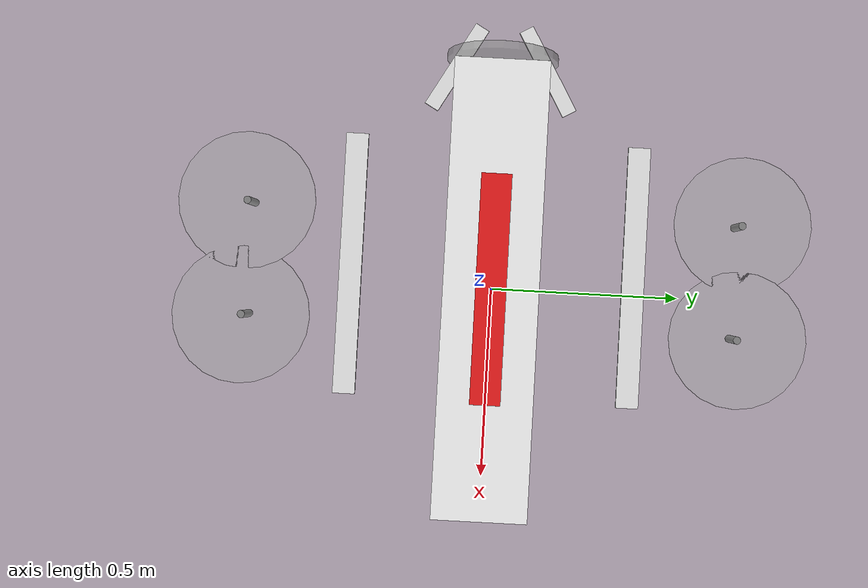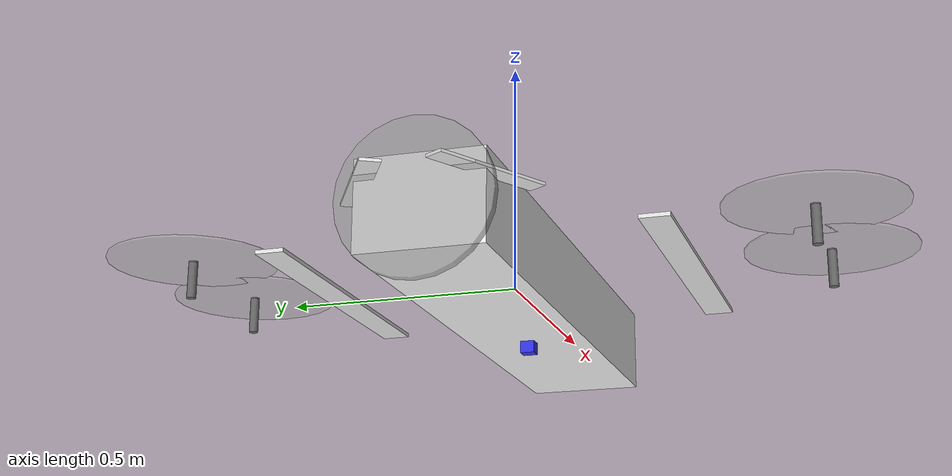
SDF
<?xml version="1.0"?>
<sdf version="1.9">
  <model name="isr_drone">
    <static>false</static>

    <!-- BASE LINK — Fuselage VTOL                  -->
    <link name="base_link">
      <pose>0 0 0 0 0 0</pose>

      <inertial>
        <mass>4.5</mass>
        <inertia>
          <!-- I = m/12 * (b² + c²) pour un box -->
          <ixx>0.0353</ixx>
          <iyy>0.5535</iyy>
          <izz>0.5625</izz>
          <ixy>0</ixy>
          <ixz>0</ixz>
          <iyz>0</iyz>
        </inertia>
      </inertial>

      <!-- Fuselage principal — blanc mat -->
      <visual name="fuselage_visual">
        <geometry>
          <box><size>1.2 0.25 0.18</size></box>
        </geometry>
        <material>
          <ambient>0.9 0.9 0.9 1</ambient>
          <diffuse>0.95 0.95 0.95 1</diffuse>
          <specular>0.2 0.2 0.2 1</specular>
        </material>
      </visual>

      <!-- Bande rouge identification sur le dessus -->
      <visual name="stripe_visual">
        <pose>0 0 0.091 0 0 0</pose>
        <geometry>
          <box><size>0.6 0.08 0.005</size></box>
        </geometry>
        <material>
          <ambient>0.8 0.0 0.0 1</ambient>
          <diffuse>0.9 0.1 0.1 1</diffuse>
        </material>
      </visual>

      <collision name="fuselage_collision">
        <geometry>
          <box><size>1.2 0.25 0.18</size></box>
        </geometry>
      </collision>
    </link>

    <!-- AILES                                      -->

    <!-- Aile gauche -->
    <link name="wing_left">
      <pose relative_to="base_link">-0.05 0.38 0 0 0 0</pose>
      <inertial>
        <mass>0.15</mass>
        <inertia>
          <ixx>0.00005</ixx><iyy>0.0061</iyy><izz>0.0061</izz>
          <ixy>0</ixy><ixz>0</ixz><iyz>0</iyz>
        </inertia>
      </inertial>
      <visual name="wing_left_visual">
        <geometry>
          <box><size>0.7 0.06 0.008</size></box>
        </geometry>
        <material>
          <ambient>0.85 0.85 0.85 1</ambient>
          <diffuse>0.9 0.9 0.9 1</diffuse>
        </material>
      </visual>
    </link>
    <joint name="wing_left_joint" type="fixed">
      <parent>base_link</parent>
      <child>wing_left</child>
    </joint>

    <!-- Aile droite -->
    <link name="wing_right">
      <pose relative_to="base_link">-0.05 -0.38 0 0 0 0</pose>
      <inertial>
        <mass>0.15</mass>
        <inertia>
          <ixx>0.00005</ixx><iyy>0.0061</iyy><izz>0.0061</izz>
          <ixy>0</ixy><ixz>0</ixz><iyz>0</iyz>
        </inertia>
      </inertial>
      <visual name="wing_right_visual">
        <geometry>
          <box><size>0.7 0.06 0.008</size></box>
        </geometry>
        <material>
          <ambient>0.85 0.85 0.85 1</ambient>
          <diffuse>0.9 0.9 0.9 1</diffuse>
        </material>
      </visual>
    </link>
    <joint name="wing_right_joint" type="fixed">
      <parent>base_link</parent>
      <child>wing_right</child>
    </joint>

    <!-- EMPENNAGE V                                -->

    <!-- Queue gauche -->
    <link name="tail_left">
      <pose relative_to="base_link">-0.58 0.12 0.05 0 0 0.52</pose>
      <inertial>
        <mass>0.05</mass>
        <inertia>
          <ixx>0.00001</ixx><iyy>0.00026</iyy><izz>0.00026</izz>
          <ixy>0</ixy><ixz>0</ixz><iyz>0</iyz>
        </inertia>
      </inertial>
      <visual name="tail_left_visual">
        <geometry>
          <box><size>0.25 0.04 0.006</size></box>
        </geometry>
        <material>
          <ambient>0.85 0.85 0.85 1</ambient>
          <diffuse>0.9 0.9 0.9 1</diffuse>
        </material>
      </visual>
    </link>
    <joint name="tail_left_joint" type="fixed">
      <parent>base_link</parent>
      <child>tail_left</child>
    </joint>

    <!-- Queue droite -->
    <link name="tail_right">
      <pose relative_to="base_link">-0.58 -0.12 0.05 0 0 -0.52</pose>
      <inertial>
        <mass>0.05</mass>
        <inertia>
          <ixx>0.00001</ixx><iyy>0.00026</iyy><izz>0.00026</izz>
          <ixy>0</ixy><ixz>0</ixz><iyz>0</iyz>
        </inertia>
      </inertial>
      <visual name="tail_right_visual">
        <geometry>
          <box><size>0.25 0.04 0.006</size></box>
        </geometry>
        <material>
          <ambient>0.85 0.85 0.85 1</ambient>
          <diffuse>0.9 0.9 0.9 1</diffuse>
        </material>
      </visual>
    </link>
    <joint name="tail_right_joint" type="fixed">
      <parent>base_link</parent>
      <child>tail_right</child>
    </joint>

    <!-- 4 NACELLES ROTORS VTOL                     -->

    <!-- Rotor Front-Left -->
    <link name="rotor_fl">
      <pose relative_to="base_link">0.1 0.65 0.02 0 0 0</pose>
      <inertial>
        <mass>0.03</mass>
        <inertia>
          <ixx>0.00001</ixx><iyy>0.00001</iyy><izz>0.00001</izz>
          <ixy>0</ixy><ixz>0</ixz><iyz>0</iyz>
        </inertia>
      </inertial>
      <!-- Nacelle -->
      <visual name="nacelle_fl_visual">
        <geometry>
          <cylinder><radius>0.01</radius><length>0.08</length></cylinder>
        </geometry>
        <material>
          <ambient>0.3 0.3 0.3 1</ambient>
          <diffuse>0.4 0.4 0.4 1</diffuse>
        </material>
      </visual>
      <!-- Disque rotor transparent -->
      <visual name="disc_fl_visual">
        <pose>0 0 0.04 0 0 0</pose>
        <geometry>
          <cylinder><radius>0.18</radius><length>0.005</length></cylinder>
        </geometry>
        <material>
          <ambient>0.6 0.6 0.6 0.4</ambient>
          <diffuse>0.7 0.7 0.7 0.4</diffuse>
        </material>
      </visual>
    </link>
    <joint name="rotor_fl_joint" type="fixed">
      <parent>base_link</parent>
      <child>rotor_fl</child>
    </joint>

    <!-- Rotor Front-Right -->
    <link name="rotor_fr">
      <pose relative_to="base_link">0.1 -0.65 0.02 0 0 0</pose>
      <inertial>
        <mass>0.03</mass>
        <inertia>
          <ixx>0.00001</ixx><iyy>0.00001</iyy><izz>0.00001</izz>
          <ixy>0</ixy><ixz>0</ixz><iyz>0</iyz>
        </inertia>
      </inertial>
      <visual name="nacelle_fr_visual">
        <geometry>
          <cylinder><radius>0.01</radius><length>0.08</length></cylinder>
        </geometry>
        <material>
          <ambient>0.3 0.3 0.3 1</ambient>
          <diffuse>0.4 0.4 0.4 1</diffuse>
        </material>
      </visual>
      <visual name="disc_fr_visual">
        <pose>0 0 0.04 0 0 0</pose>
        <geometry>
          <cylinder><radius>0.18</radius><length>0.005</length></cylinder>
        </geometry>
        <material>
          <ambient>0.6 0.6 0.6 0.4</ambient>
          <diffuse>0.7 0.7 0.7 0.4</diffuse>
        </material>
      </visual>
    </link>
    <joint name="rotor_fr_joint" type="fixed">
      <parent>base_link</parent>
      <child>rotor_fr</child>
    </joint>

    <!-- Rotor Rear-Left -->
    <link name="rotor_rl">
      <pose relative_to="base_link">-0.2 0.65 0.02 0 0 0</pose>
      <inertial>
        <mass>0.03</mass>
        <inertia>
          <ixx>0.00001</ixx><iyy>0.00001</iyy><izz>0.00001</izz>
          <ixy>0</ixy><ixz>0</ixz><iyz>0</iyz>
        </inertia>
      </inertial>
      <visual name="nacelle_rl_visual">
        <geometry>
          <cylinder><radius>0.01</radius><length>0.08</length></cylinder>
        </geometry>
        <material>
          <ambient>0.3 0.3 0.3 1</ambient>
          <diffuse>0.4 0.4 0.4 1</diffuse>
        </material>
      </visual>
      <visual name="disc_rl_visual">
        <pose>0 0 0.04 0 0 0</pose>
        <geometry>
          <cylinder><radius>0.18</radius><length>0.005</length></cylinder>
        </geometry>
        <material>
          <ambient>0.6 0.6 0.6 0.4</ambient>
          <diffuse>0.7 0.7 0.7 0.4</diffuse>
        </material>
      </visual>
    </link>
    <joint name="rotor_rl_joint" type="fixed">
      <parent>base_link</parent>
      <child>rotor_rl</child>
    </joint>

    <!-- Rotor Rear-Right -->
    <link name="rotor_rr">
      <pose relative_to="base_link">-0.2 -0.65 0.02 0 0 0</pose>
      <inertial>
        <mass>0.03</mass>
        <inertia>
          <ixx>0.00001</ixx><iyy>0.00001</iyy><izz>0.00001</izz>
          <ixy>0</ixy><ixz>0</ixz><iyz>0</iyz>
        </inertia>
      </inertial>
      <visual name="nacelle_rr_visual">
        <geometry>
          <cylinder><radius>0.01</radius><length>0.08</length></cylinder>
        </geometry>
        <material>
          <ambient>0.3 0.3 0.3 1</ambient>
          <diffuse>0.4 0.4 0.4 1</diffuse>
        </material>
      </visual>
      <visual name="disc_rr_visual">
        <pose>0 0 0.04 0 0 0</pose>
        <geometry>
          <cylinder><radius>0.18</radius><length>0.005</length></cylinder>
        </geometry>
        <material>
          <ambient>0.6 0.6 0.6 0.4</ambient>
          <diffuse>0.7 0.7 0.7 0.4</diffuse>
        </material>
      </visual>
    </link>
    <joint name="rotor_rr_joint" type="fixed">
      <parent>base_link</parent>
      <child>rotor_rr</child>
    </joint>

    <!-- HÉLICE PUSHER ARRIÈRE                      -->
    <link name="pusher_prop">
      <pose relative_to="base_link">-0.62 0 0 0 1.5708 0</pose>
      <inertial>
        <mass>0.02</mass>
        <inertia>
          <ixx>0.00001</ixx><iyy>0.00001</iyy><izz>0.00001</izz>
          <ixy>0</ixy><ixz>0</ixz><iyz>0</iyz>
        </inertia>
      </inertial>
      <visual name="pusher_visual">
        <geometry>
          <cylinder><radius>0.15</radius><length>0.02</length></cylinder>
        </geometry>
        <material>
          <ambient>0.5 0.5 0.5 0.6</ambient>
          <diffuse>0.6 0.6 0.6 0.6</diffuse>
        </material>
      </visual>
    </link>
    <joint name="pusher_prop_joint" type="fixed">
      <parent>base_link</parent>
      <child>pusher_prop</child>
    </joint>

    <!-- CAMÉRA NADIR                               -->
    <link name="camera_link">
      <!-- Sous le fuselage, pointant vers le bas (rotation 90° en pitch) -->
      <pose relative_to="base_link">0.1 0 -0.1 0 1.5708 0</pose>

      <inertial>
        <mass>0.05</mass>
        <inertia>
          <ixx>0.00001</ixx><iyy>0.00001</iyy><izz>0.00001</izz>
          <ixy>0</ixy><ixz>0</ixz><iyz>0</iyz>
        </inertia>
      </inertial>

      <visual name="camera_visual">
        <geometry>
          <box><size>0.03 0.03 0.03</size></box>
        </geometry>
        <material>
          <ambient>0.1 0.1 0.8 1</ambient>
          <diffuse>0.2 0.2 0.9 1</diffuse>
        </material>
      </visual>

      <sensor name="camera" type="camera">
        <always_on>true</always_on>
        <update_rate>10</update_rate>
        <visualize>true</visualize>
        <camera>
          <horizontal_fov>1.047</horizontal_fov>
          <image>
            <width>640</width>
            <height>480</height>
            <format>R8G8B8</format>
          </image>
          <clip>
            <near>0.1</near>
            <far>200</far>
          </clip>
        </camera>
      </sensor>
    </link>
    <joint name="camera_joint" type="fixed">
      <parent>base_link</parent>
      <child>camera_link</child>
    </joint>

    <!-- IMU                                        -->
    <link name="imu_link">
      <pose relative_to="base_link">0 0 0 0 0 0</pose>

      <inertial>
        <mass>0.01</mass>
        <inertia>
          <ixx>0.00001</ixx><iyy>0.00001</iyy><izz>0.00001</izz>
          <ixy>0</ixy><ixz>0</ixz><iyz>0</iyz>
        </inertia>
      </inertial>

      <sensor name="imu" type="imu">
        <always_on>true</always_on>
        <update_rate>100</update_rate>
        <imu>
          <angular_velocity>
            <x><noise type="gaussian"><mean>0</mean><stddev>0.0002</stddev></noise></x>
            <y><noise type="gaussian"><mean>0</mean><stddev>0.0002</stddev></noise></y>
            <z><noise type="gaussian"><mean>0</mean><stddev>0.0002</stddev></noise></z>
          </angular_velocity>
          <linear_acceleration>
            <x><noise type="gaussian"><mean>0</mean><stddev>0.017</stddev></noise></x>
            <y><noise type="gaussian"><mean>0</mean><stddev>0.017</stddev></noise></y>
            <z><noise type="gaussian"><mean>0</mean><stddev>0.017</stddev></noise></z>
          </linear_acceleration>
        </imu>
      </sensor>
    </link>
    <joint name="imu_joint" type="fixed">
      <parent>base_link</parent>
      <child>imu_link</child>
    </joint>

    <!-- PLUGINS                                    -->

    <!-- Camera sensor system -->
    <plugin filename="gz-sim-sensors-system"
            name="gz::sim::systems::Sensors">
      <render_engine>ogre2</render_engine>
    </plugin>

    <!-- IMU sensor system -->
    <plugin filename="gz-sim-imu-system"
            name="gz::sim::systems::Imu"/>

    <!-- PosePublisher — publie les TFs du modèle vers Gazebo transport -->
    <plugin filename="gz-sim-pose-publisher-system"
            name="gz::sim::systems::PosePublisher">
      <publish_link_pose>true</publish_link_pose>
      <publish_sensor_pose>true</publish_sensor_pose>
      <publish_collision_pose>false</publish_collision_pose>
      <publish_visual_pose>false</publish_visual_pose>
      <publish_nested_model_pose>false</publish_nested_model_pose>
      <static_publisher>true</static_publisher>
      <static_update_frequency>1</static_update_frequency>
      <update_frequency>50</update_frequency>
    </plugin>

    <!-- OdometryPublisher — publie l'odom du drone -->
    <plugin filename="gz-sim-odometry-publisher-system"
            name="gz::sim::systems::OdometryPublisher">
      <odom_frame>odom</odom_frame>
      <robot_base_frame>base_link</robot_base_frame>
      <odom_publish_frequency>50</odom_publish_frequency>
      <dimensions>3</dimensions>
    </plugin>

    <!-- VelocityControl — contrôle cmd_vel direct -->
    <plugin filename="gz-sim-velocity-control-system"
            name="gz::sim::systems::VelocityControl">
      <topic>/model/isr_drone/cmd_vel</topic>
    </plugin>

  </model>
</sdf>
